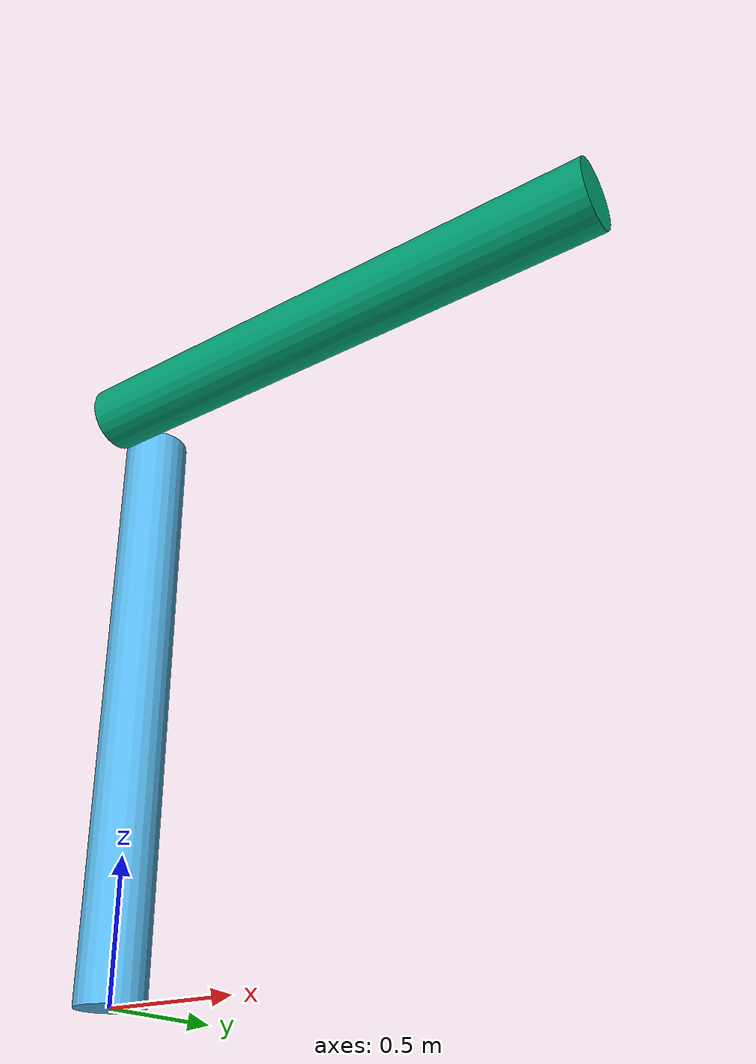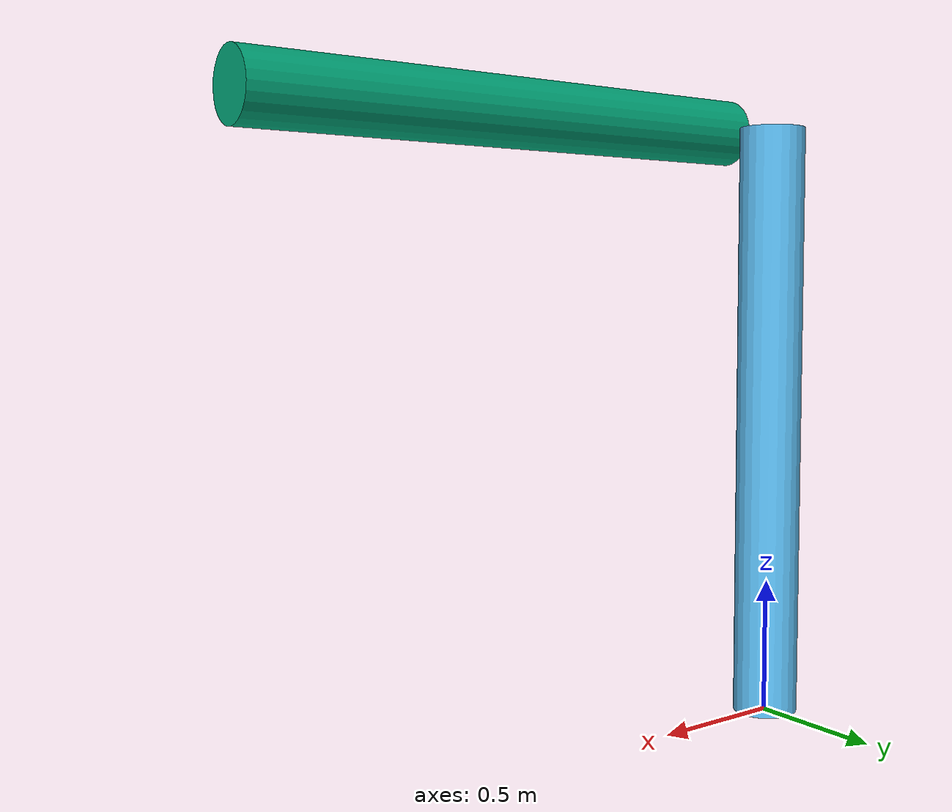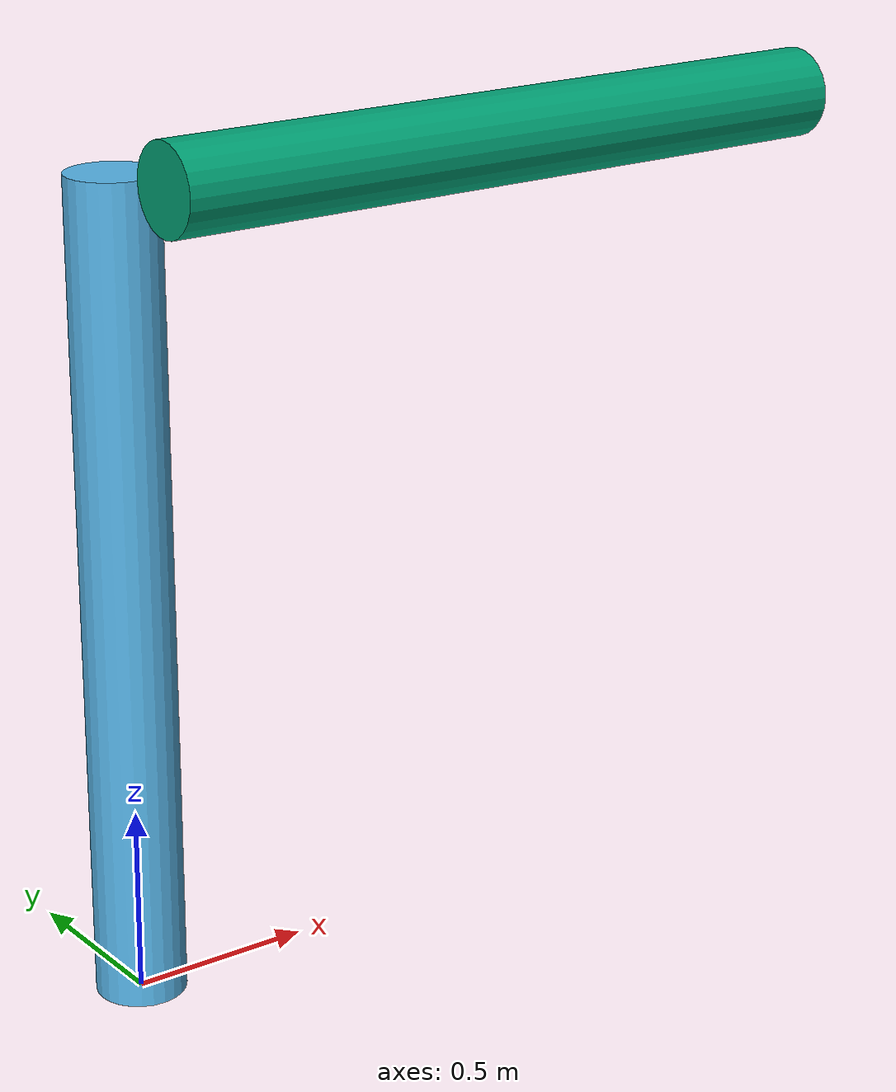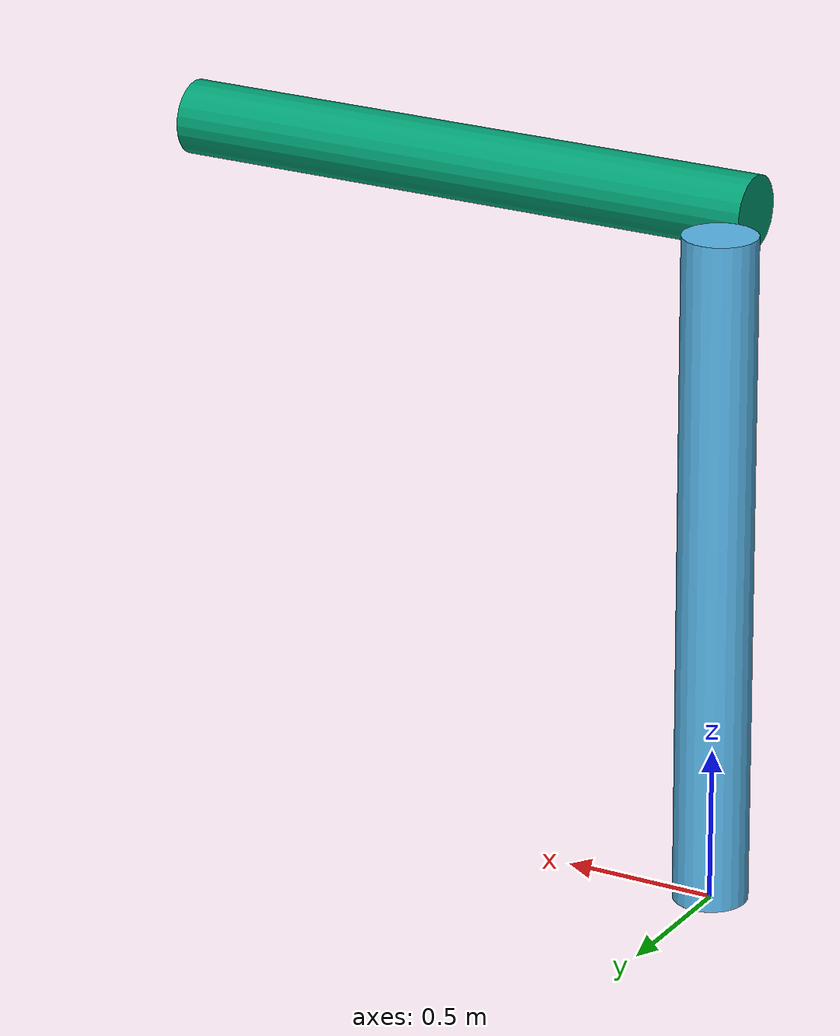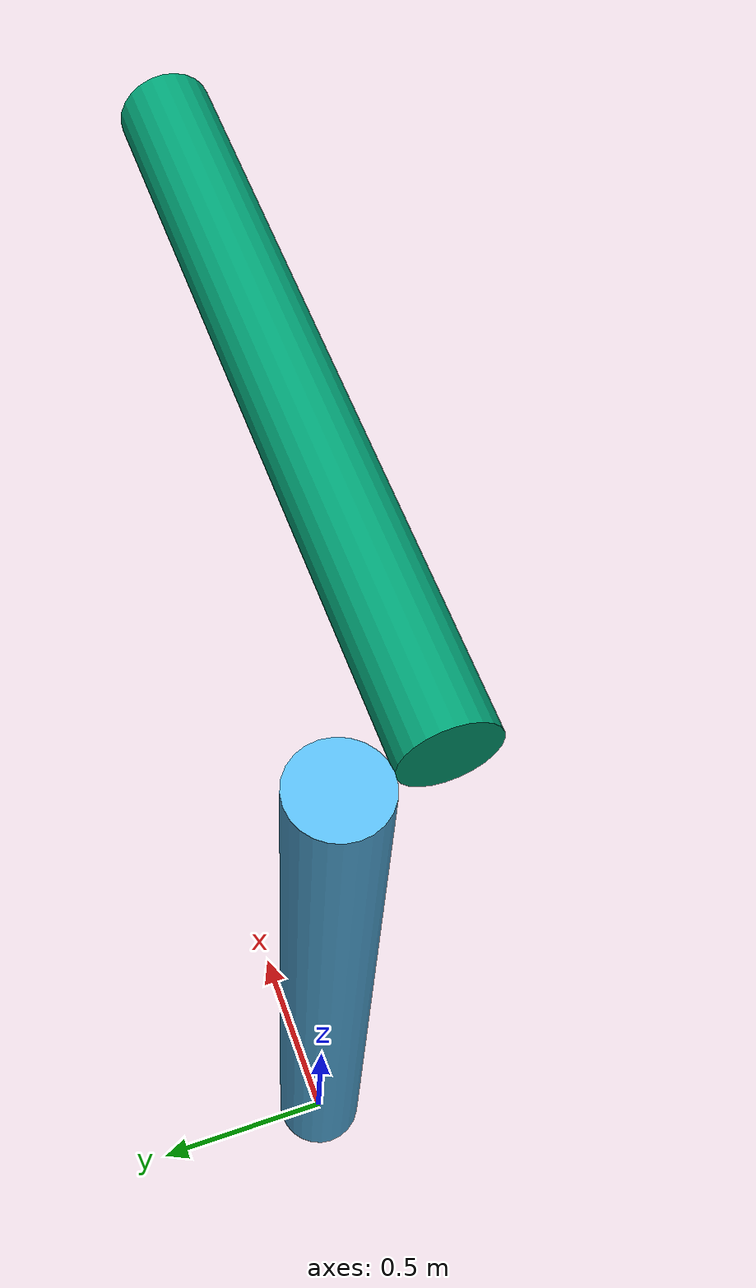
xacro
<?xml version="1.0" ?>
<robot name="s_arm" xmlns:xacro="http://ros.org/wiki/xacro">

  <joint name="dummy_joint" type="fixed">
     <parent link="world"/>
     <child link="link_0"/>
     <origin rpy="0 0 0" xyz="0 0 1.1"/>
   </joint>

  <joint name="joint_1" type="revolute">
    <parent link="link_0"/>
    <child link="link_1"/>
    <origin rpy="0 0 0" xyz="0 0 1.1"/>
    <axis xyz="0 -1  0"/>
    <dynamics damping="15" friction="0.0"/>
    <limit effort="1e10" lower="-3.1415" upper="3.1415" velocity="1e10"/>
  </joint>

    <link name="world">
       </link>

  <link name="link_0">
    <inertial>
      <mass value="1"/>
      <origin rpy="0 0 0" xyz="0 0 0"/>
      <inertia ixx="0.25" ixy="0" ixz="0" iyy="0.25" iyz="0" izz="0.0001"/>
    </inertial>
    <collision name="collision">
      <origin rpy="0 0 0" xyz="0 0 0"/>
      <geometry>
        <cylinder length="2.2" radius="0.12"/>
      </geometry>
    </collision>
    <visual name="visual">
      <origin rpy="0 0 0" xyz="0 0 0"/>
      <geometry>
        <cylinder length="2.2" radius="0.12"/>
      </geometry>
    </visual>
  </link>

  <link name="link_1">
    <inertial>
      <mass value="1"/>
      <origin rpy="0 1.5707 0" xyz="1.0 -0.24 0"/>
      <inertia ixx="0.25" ixy="0" ixz="0" iyy="0.25" iyz="0" izz="0.0001"/>
    </inertial>
    <collision name="collision">
      <origin rpy="0 1.5707 0" xyz="1.0 -0.24 0"/>
      <geometry>
        <cylinder length="2.0" radius="0.12"/>
      </geometry>
    </collision>
    <visual name="visual">
      <origin rpy="0 1.5707 0" xyz="1.0 -0.24 0"/>
      <geometry>
        <cylinder length="2.0" radius="0.12"/>
      </geometry>
    </visual>
  </link>

    <!-- Transmissions for ROS Control -->
    <xacro:macro name="transmission_block" params="joint_name">
        <transmission name="tran1">
            <type>transmission_interface/SimpleTransmission</type>
            <joint name="${joint_name}">
                <hardwareInterface>hardware_interface/EffortJointInterface</hardwareInterface>
            </joint>
            <actuator name="motor1">
                <hardwareInterface>hardware_interface/EffortJointInterface</hardwareInterface>
                <mechanicalReduction>1</mechanicalReduction>
            </actuator>
        </transmission>
    </xacro:macro>

    <xacro:transmission_block joint_name="joint_1"/>

    <!-- ros_control plugin -->
    <gazebo>
        <plugin name="gazebo_ros_control" filename="libgazebo_ros_control.so">
            <robotNamespace>/s_arm</robotNamespace>
        </plugin>
    </gazebo>

</robot>
